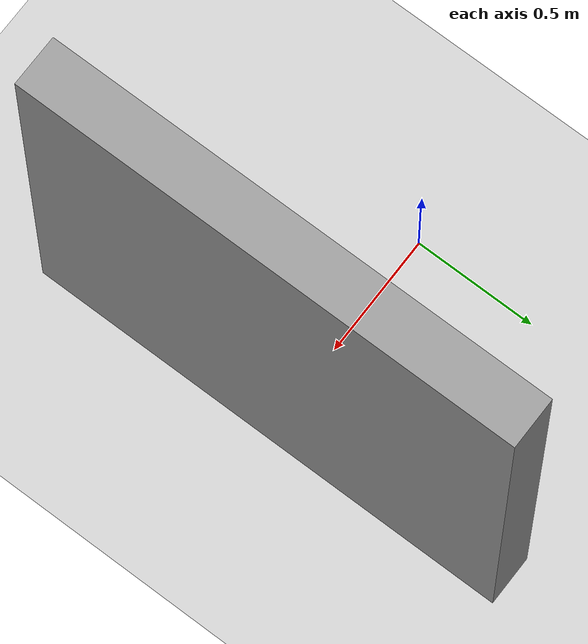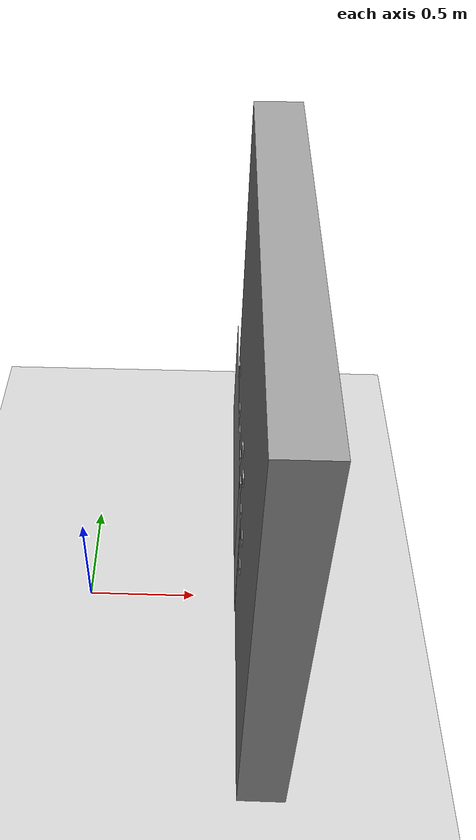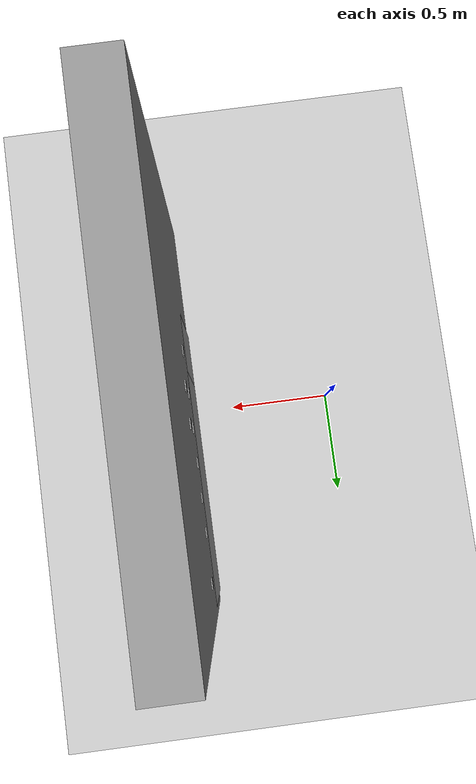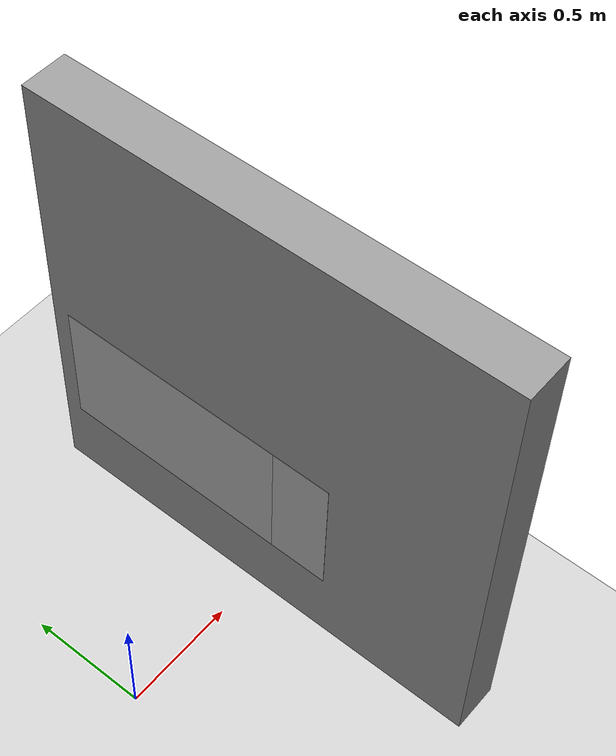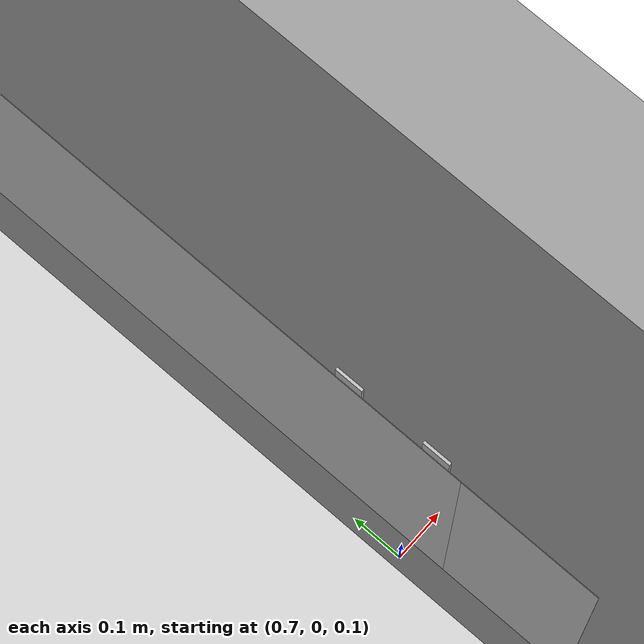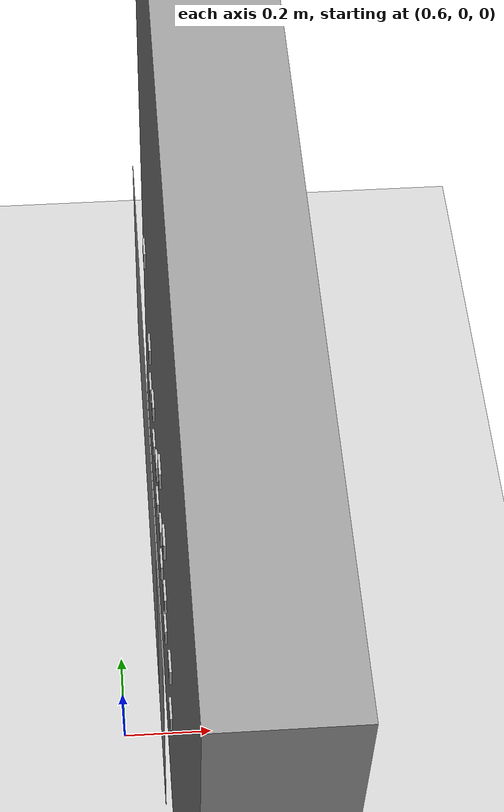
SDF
<?xml version="1.0"?>
<sdf version="1.6">
  <world name="elevator_world">

    <!-- Physics -->
    <physics type="ode">
      <max_step_size>0.001</max_step_size>
      <real_time_factor>1</real_time_factor>
      <real_time_update_rate>1000</real_time_update_rate>
    </physics>

    <!-- 기본 환경 -->
    <include><uri>model://sun</uri></include>
    <include><uri>model://ground_plane</uri></include>

    <!-- Elevator Wall -->
    <model name="elevator_walls">
      <static>true</static>
      <pose>0.8 0 1 0 0 1.5708</pose>
      <link name="walls_link">
        <collision name="collision">
          <geometry><box><size>2 0.2 2</size></box></geometry>
        </collision>
        <visual name="visual">
          <geometry><box><size>2 0.2 2</size></box></geometry>
          <material>
            <script>
              <uri>file:///home/sunbi/ros/install/ur_simulation_gazebo/share/ur_simulation_gazebo/materials/scripts</uri>
              <uri>file:///home/sunbi/ros/install/ur_simulation_gazebo/share/ur_simulation_gazebo/materials/textures</uri>

              <name>Gazebo/Gray</name>
            </script>
          </material>
        </visual>
      </link>
    </model>

        <!-- Non-interactive poster image -->
    <model name="pannel">
      <static>true</static>
      <!-- 벽 앞에 아주 살짝 띄워서 Z-fighting 방지: x=0.755로 5mm 전진 -->
      <pose>0.68 0.4 0.66 0 0 1.5708</pose>

      <link name="poster_link">
        <!-- 충돌 없음: 시뮬 물리와 상호작용 안 함 -->
        <visual name="elv_pannel">
          <!-- 0.3m x 0.2m 평면. 비율은 이미지에 맞춰 조절 -->
          <geometry>
            <box>
              <size>1.0 0.001 0.575</size>
            </box>
          </geometry>
          <cast_shadows>false</cast_shadows>
          <material>
            <script>
              <uri>file:///home/sunbi/ros/install/ur_simulation_gazebo/share/ur_simulation_gazebo/materials/scripts</uri>
              <uri>file:///home/sunbi/ros/install/ur_simulation_gazebo/share/ur_simulation_gazebo/materials/textures</uri>
              <name>elevator/pannel</name>
            </script>
          </material>
        </visual>
      </link>
    </model>

        <!-- Non-interactive poster image -->
    <model name="updown">
      <static>true</static>
      <!-- 벽 앞에 아주 살짝 띄워서 Z-fighting 방지: x=0.755로 5mm 전진 -->
      <pose>0.68 -0.221358 0.66 0 0 1.5708</pose>

      <link name="poster_link">
        <!-- 충돌 없음: 시뮬 물리와 상호작용 안 함 -->
        <visual name="elv_up_down">
          <!-- 0.3m x 0.2m 평면. 비율은 이미지에 맞춰 조절 -->
          <geometry>
            <box>
              <size>0.25 0.001 0.575</size>
            </box>
          </geometry>
          <cast_shadows>false</cast_shadows>
          <material>
            <script>
              <uri>file:///home/sunbi/ros/install/ur_simulation_gazebo/share/ur_simulation_gazebo/materials/scripts</uri>
              <uri>file:///home/sunbi/ros/install/ur_simulation_gazebo/share/ur_simulation_gazebo/materials/textures</uri>
              <name>elevator/up_down</name>
            </script>
          </material>
        </visual>
      </link>
    </model>

    <!-- size = 5cm x 5cm, depth = 1cm -->
    <!-- pose: x=0.75 y={0.11 or 0} z varies -->

    <!-- Button L -->
    <model name="buttonL">
      <static>true</static>
      <link name="button_link">
        <pose>0.70 0.606074 0.527747 0 0 1.5708</pose>
        <collision name="collision"><geometry><box><size>0.05 0.01 0.05</size></box></geometry></collision>
        <visual name="visual">
          <geometry><box><size>0.05 0.01 0.05</size></box></geometry>
          <material><script>
            <uri>file:///home/sunbi/ros/install/ur_simulation_gazebo/share/ur_simulation_gazebo/materials/scripts</uri>
            <uri>file:///home/sunbi/ros/install/ur_simulation_gazebo/share/ur_simulation_gazebo/materials/textures</uri>
            <name>elevator/button_L</name>
          </script></material>
        </visual>
      </link>
      <plugin name="plugin_btnL" filename="libelevator_button_plugin.so"><ros><namespace>/elevator/button1</namespace></ros></plugin>
    </model>

    <!-- Button 1 -->
    <model name="button1">
      <static>true</static>
      <link name="button_link">
        <pose>0.70 0.446955 0.527747 0 0 1.5708</pose>
        <collision name="collision"><geometry><box><size>0.05 0.01 0.05</size></box></geometry></collision>
        <visual name="visual">
          <geometry><box><size>0.05 0.01 0.05</size></box></geometry>
          <material><script>
            <uri>file:///home/sunbi/ros/install/ur_simulation_gazebo/share/ur_simulation_gazebo/materials/scripts</uri>
            <uri>file:///home/sunbi/ros/install/ur_simulation_gazebo/share/ur_simulation_gazebo/materials/textures</uri>
            <name>elevator/button_1</name>
          </script></material>
        </visual>
      </link>
      <plugin name="plugin_btn1" filename="libelevator_button_plugin.so"><ros><namespace>/elevator/button2</namespace></ros></plugin>
    </model>

    <!-- Button 2 -->
    <model name="button2">
      <static>true</static>
      <link name="button_link">
        <pose>0.70 0.292778 0.527747 0 0 1.5708</pose>
        <collision name="collision"><geometry><box><size>0.05 0.01 0.05</size></box></geometry></collision>
        <visual name="visual">
          <geometry><box><size>0.05 0.01 0.05</size></box></geometry>
          <material><script>
            <uri>file:///home/sunbi/ros/install/ur_simulation_gazebo/share/ur_simulation_gazebo/materials/scripts</uri>
            <uri>file:///home/sunbi/ros/install/ur_simulation_gazebo/share/ur_simulation_gazebo/materials/textures</uri>
            <name>elevator/button_2</name>
          </script></material>
        </visual>
      </link>
      <plugin name="plugin_btn2" filename="libelevator_button_plugin.so"><ros><namespace>/elevator/button3</namespace></ros></plugin>
    </model>

    <!-- Button 3 -->
    <model name="button3">
      <static>true</static>
      <link name="button_link">
        <pose>0.70 0.133548 0.527747 0 0 1.5708</pose>
        <collision name="collision"><geometry><box><size>0.05 0.01 0.05</size></box></geometry></collision>
        <visual name="visual">
          <geometry><box><size>0.05 0.01 0.05</size></box></geometry>
          <material><script>
            <uri>file:///home/sunbi/ros/install/ur_simulation_gazebo/share/ur_simulation_gazebo/materials/scripts</uri>
            <uri>file:///home/sunbi/ros/install/ur_simulation_gazebo/share/ur_simulation_gazebo/materials/textures</uri>
            <name>elevator/button_3</name>
          </script></material>
        </visual>
      </link>
      <plugin name="plugin_btn3" filename="libelevator_button_plugin.so"><ros><namespace>/elevator/button4</namespace></ros></plugin>
    </model>

    <!-- Button 4 -->
    <model name="button4">
      <static>true</static>
      <link name="button_link">
        <pose>0.70 -0.021358 0.527747 0 0 1.5708</pose>
        <collision name="collision"><geometry><box><size>0.05 0.01 0.05</size></box></geometry></collision>
        <visual name="visual">
          <geometry><box><size>0.05 0.01 0.05</size></box></geometry>
          <material><script>
            <uri>file:///home/sunbi/ros/install/ur_simulation_gazebo/share/ur_simulation_gazebo/materials/scripts</uri>
            <uri>file:///home/sunbi/ros/install/ur_simulation_gazebo/share/ur_simulation_gazebo/materials/textures</uri>
            <name>elevator/button_4</name>
          </script></material>
        </visual>
      </link>
      <plugin name="plugin_btn4" filename="libelevator_button_plugin.so"><ros><namespace>/elevator/button5</namespace></ros></plugin>
    </model>

    <!-- Button 5 -->
    <model name="button5">
      <static>true</static>
      <link name="button_link">
        <pose>0.70 0.605281 0.670502 0 0 1.5708</pose>
        <collision name="collision"><geometry><box><size>0.05 0.01 0.05</size></box></geometry></collision>
        <visual name="visual">
          <geometry><box><size>0.05 0.01 0.05</size></box></geometry>
          <material><script>
            <uri>file:///home/sunbi/ros/install/ur_simulation_gazebo/share/ur_simulation_gazebo/materials/scripts</uri>
            <uri>file:///home/sunbi/ros/install/ur_simulation_gazebo/share/ur_simulation_gazebo/materials/textures</uri>
            <name>elevator/button_5</name>
          </script></material>
        </visual>
      </link>
      <plugin name="plugin_btn5" filename="libelevator_button_plugin.so"><ros><namespace>/elevator/button6</namespace></ros></plugin>
    </model>

    <!-- Button 6 -->
    <model name="button6">
      <static>true</static>
      <link name="button_link">
        <pose>0.70 0.449066 0.670502 0 0 1.5708</pose>
        <collision name="collision"><geometry><box><size>0.05 0.01 0.05</size></box></geometry></collision>
        <visual name="visual">
          <geometry><box><size>0.05 0.01 0.05</size></box></geometry>
          <material><script>
            <uri>file:///home/sunbi/ros/install/ur_simulation_gazebo/share/ur_simulation_gazebo/materials/scripts</uri>
            <uri>file:///home/sunbi/ros/install/ur_simulation_gazebo/share/ur_simulation_gazebo/materials/textures</uri>
            <name>elevator/button_6</name>
          </script></material>
        </visual>
      </link>
      <plugin name="plugin_btn6" filename="libelevator_button_plugin.so"><ros><namespace>/elevator/buttonO</namespace></ros></plugin>
    </model>

    <!-- Button 7 -->
    <model name="button7">
      <static>true</static>
      <link name="button_link">
        <pose>0.70 0.290266 0.670502 0 0 1.5708</pose>
        <collision name="collision"><geometry><box><size>0.05 0.01 0.05</size></box></geometry></collision>
        <visual name="visual">
          <geometry><box><size>0.05 0.01 0.05</size></box></geometry>
          <material><script>
            <uri>file:///home/sunbi/ros/install/ur_simulation_gazebo/share/ur_simulation_gazebo/materials/scripts</uri>
            <uri>file:///home/sunbi/ros/install/ur_simulation_gazebo/share/ur_simulation_gazebo/materials/textures</uri>
            <name>elevator/button_7</name>
          </script></material>
        </visual>
      </link>
      <plugin name="plugin_btn7" filename="libelevator_button_plugin.so"><ros><namespace>/elevator/buttonC</namespace></ros></plugin>
    </model>

    <!-- Button 8 -->
    <model name="button8">
      <static>true</static>
      <link name="button_link">
        <pose>0.70 0.129762 0.670502 0 0 1.5708</pose>
        <collision name="collision"><geometry><box><size>0.05 0.01 0.05</size></box></geometry></collision>
        <visual name="visual">
          <geometry><box><size>0.05 0.01 0.05</size></box></geometry>
          <material><script>
            <uri>file:///home/sunbi/ros/install/ur_simulation_gazebo/share/ur_simulation_gazebo/materials/scripts</uri>
            <uri>file:///home/sunbi/ros/install/ur_simulation_gazebo/share/ur_simulation_gazebo/materials/textures</uri>
            <name>elevator/button_8</name>
          </script></material>
        </visual>
      </link>
      <plugin name="plugin_btn8" filename="libelevator_button_plugin.so"><ros><namespace>/elevator/buttonC</namespace></ros></plugin>
    </model>

    <!-- Button 9 -->
    <model name="button9">
      <static>true</static>
      <link name="button_link">
        <pose>0.70 -0.031069 0.670502 0 0 1.5708</pose>
        <collision name="collision"><geometry><box><size>0.05 0.01 0.05</size></box></geometry></collision>
        <visual name="visual">
          <geometry><box><size>0.05 0.01 0.05</size></box></geometry>
          <material><script>
            <uri>file:///home/sunbi/ros/install/ur_simulation_gazebo/share/ur_simulation_gazebo/materials/scripts</uri>
            <uri>file:///home/sunbi/ros/install/ur_simulation_gazebo/share/ur_simulation_gazebo/materials/textures</uri>
            <name>elevator/button_9</name>
          </script></material>
        </visual>
      </link>
      <plugin name="plugin_btn9" filename="libelevator_button_plugin.so"><ros><namespace>/elevator/buttonC</namespace></ros></plugin>
    </model>

    <!-- Button C -->
    <model name="buttonC">
      <static>true</static>
      <link name="button_link">
        <pose>0.70 -0.039066 0.887947 0 0 1.5708</pose>
        <collision name="collision"><geometry><box><size>0.05 0.01 0.05</size></box></geometry></collision>
        <visual name="visual">
          <geometry><box><size>0.05 0.01 0.05</size></box></geometry>
          <material><script>
            <uri>file:///home/sunbi/ros/install/ur_simulation_gazebo/share/ur_simulation_gazebo/materials/scripts</uri>
            <uri>file:///home/sunbi/ros/install/ur_simulation_gazebo/share/ur_simulation_gazebo/materials/textures</uri>
            <name>elevator/button_c</name>
          </script></material>
        </visual>
      </link>
      <plugin name="plugin_btnC" filename="libelevator_button_plugin.so"><ros><namespace>/elevator/buttonC</namespace></ros></plugin>
    </model>

    <!-- Button O -->
    <model name="buttonO">
      <static>true</static>
      <link name="button_link">
        <pose>0.70 0.125068 0.887947 0 0 1.5708</pose>
        <collision name="collision"><geometry><box><size>0.05 0.01 0.05</size></box></geometry></collision>
        <visual name="visual">
          <geometry><box><size>0.05 0.01 0.05</size></box></geometry>
          <material><script>
            <uri>file:///home/sunbi/ros/install/ur_simulation_gazebo/share/ur_simulation_gazebo/materials/scripts</uri>
            <uri>file:///home/sunbi/ros/install/ur_simulation_gazebo/share/ur_simulation_gazebo/materials/textures</uri>
            <name>elevator/button_O</name>
          </script></material>
        </visual>
      </link>
      <plugin name="plugin_btnO" filename="libelevator_button_plugin.so"><ros><namespace>/elevator/buttonC</namespace></ros></plugin>
    </model>

    <!-- Button A -->
    <model name="buttonA">
      <static>true</static>
      <link name="button_link">
        <pose>0.70 0.824422 0.742291 0 0 1.5708</pose>
        <collision name="collision"><geometry><box><size>0.05 0.01 0.05</size></box></geometry></collision>
        <visual name="visual">
          <geometry><box><size>0.05 0.01 0.05</size></box></geometry>
          <material><script>
            <uri>file:///home/sunbi/ros/install/ur_simulation_gazebo/share/ur_simulation_gazebo/materials/scripts</uri>
            <uri>file:///home/sunbi/ros/install/ur_simulation_gazebo/share/ur_simulation_gazebo/materials/textures</uri>
            <name>elevator/button_A</name>
          </script></material>
        </visual>
      </link>
      <plugin name="plugin_btnA" filename="libelevator_button_plugin.so"><ros><namespace>/elevator/buttonC</namespace></ros></plugin>
    </model>

    <!-- Button U -->
    <model name="buttonU">
      <static>true</static>
      <link name="button_link">
        <pose>0.70 -0.221358 0.725 0 0 1.5708</pose>
        <collision name="collision"><geometry><box><size>0.05 0.01 0.05</size></box></geometry></collision>
        <visual name="visual">
          <geometry><box><size>0.05 0.01 0.05</size></box></geometry>
          <material><script>
            <uri>file:///home/sunbi/ros/install/ur_simulation_gazebo/share/ur_simulation_gazebo/materials/scripts</uri>
            <uri>file:///home/sunbi/ros/install/ur_simulation_gazebo/share/ur_simulation_gazebo/materials/textures</uri>
            <name>elevator/button_A</name>
          </script></material>
        </visual>
      </link>
      <plugin name="plugin_btnU" filename="libelevator_button_plugin.so"><ros><namespace>/elevator/buttonC</namespace></ros></plugin>
    </model>

    <!-- Button D -->
    <model name="buttonD">
      <static>true</static>
      <link name="button_link">
        <pose>0.70 -0.221358 0.53 0 0 1.5708</pose>
        <collision name="collision"><geometry><box><size>0.05 0.01 0.05</size></box></geometry></collision>
        <visual name="visual">
          <geometry><box><size>0.05 0.01 0.05</size></box></geometry>
          <material><script>
            <uri>file:///home/sunbi/ros/install/ur_simulation_gazebo/share/ur_simulation_gazebo/materials/scripts</uri>
            <uri>file:///home/sunbi/ros/install/ur_simulation_gazebo/share/ur_simulation_gazebo/materials/textures</uri>
            <name>elevator/button_A</name>
          </script></material>
        </visual>
      </link>
      <plugin name="plugin_btnD" filename="libelevator_button_plugin.so"><ros><namespace>/elevator/buttonC</namespace></ros></plugin>
    </model>

  </world>
</sdf>
